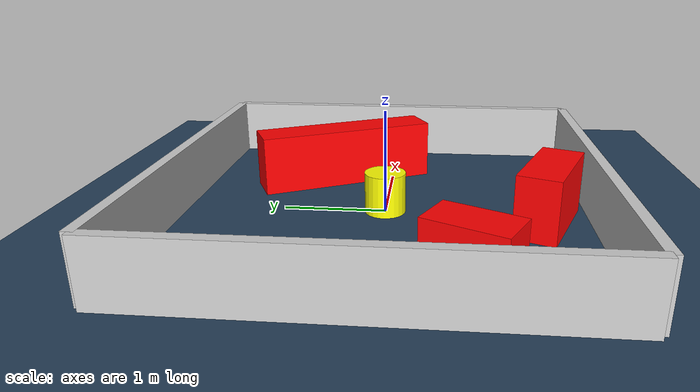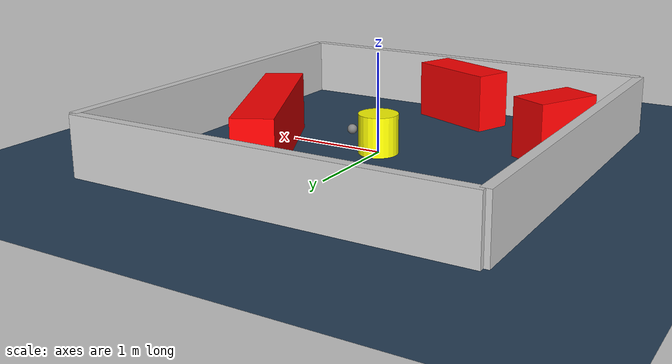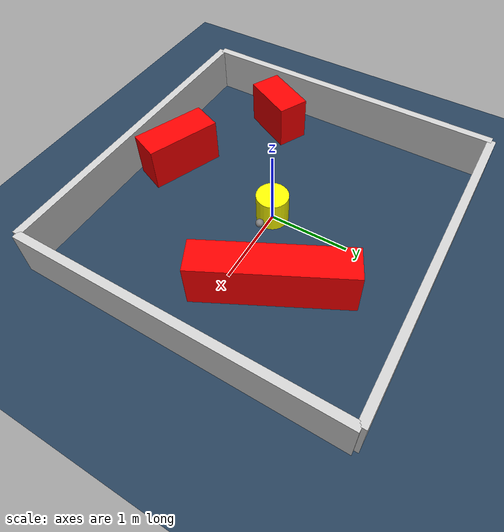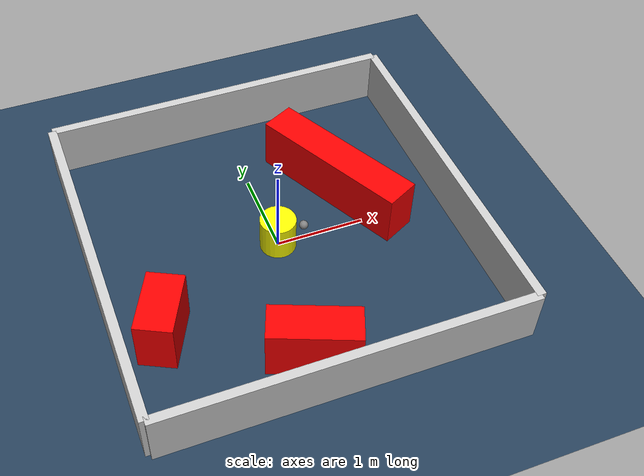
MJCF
<?xml version="1.0" ?>
<mujoco model="generated_environment">
  <option timestep="0.01" integrator="RK4" cone="elliptic"/>
  <default>
    <geom density="1"/>
  </default>
  <asset>
    <texture builtin="gradient" height="3072" rgb1="0.3 0.5 0.7" rgb2="0 0 0" type="skybox" width="512"/>
    <texture builtin="checker" height="300" mark="edge" markrgb="0.8 0.8 0.8" name="groundplane" rgb1="0.2 0.3 0.4" rgb2="0.1 0.2 0.3" type="2d" width="300"/>
    <material name="groundplane" reflectance="0.2" texrepeat="5 5" texture="groundplane" texuniform="true"/>
    <material name="robot" rgba="0.0 1.0 0.0 1"/>
  </asset>
  <worldbody>
    <light dir="0 0 -1" directional="true" pos="0 0 1.5"/>
    <geom condim="4" friction="1.0 0.005 0.001" material="groundplane" name="floor" size="0 0 0.05" type="plane"/>
    <body name="walls">
      <geom name="wall_1" condim="4" pos="-2.0 0.0 0.3" rgba="0.800000011920929 0.800000011920929 0.800000011920929 1.0" size="0.05 2.0 0.3" type="box"/>
      <geom name="wall_2" condim="4" pos="2.0 0.0 0.3" rgba="0.800000011920929 0.800000011920929 0.800000011920929 1.0" size="0.05 2.0 0.3" type="box"/>
      <geom name="wall_3" condim="4" pos="0.0 -2.0 0.3" rgba="0.800000011920929 0.800000011920929 0.800000011920929 1.0" size="2.0 0.05 0.3" type="box"/>
      <geom name="wall_4" condim="4" pos="0.0 2.0 0.3" rgba="0.800000011920929 0.800000011920929 0.800000011920929 1.0" size="2.0 0.05 0.3" type="box"/>
    </body>
    <body name="robot">
      <joint name="joint_x" type="slide" pos="0 0 0" axis="1 0 0"/>
      <joint name="joint_y" type="slide" pos="0 0 0" axis="0 1 0"/>
      <geom name="robot" type="sphere" pos="0.3 0.0 0.2" size="0.05" mass="5." friction="1.0 0.005 0.0001" condim="4" rgba="0.5 0.5 0.5 1.0"/>
      <site name="sensor_ball"/>
    </body>
    <body name="obstacle_movable_1">
      <geom name="obstacle_movable_1" condim="4" pos="0.0 0.0 0.2" euler="0 0 0.0" friction="1.0 0.005 0.001" rgba="1.0 1.0 0.0 1.0" size="0.2 0.2 0.0" type="cylinder" mass="0.1"/>
      <joint type="free"/>
    </body>
    <body name="obstacle_2_static">
      <geom name="obstacle_2_static" condim="4" pos="-0.1961719763340053 -1.5329952449548627 0.3" euler="0 0 337.9610249823045" friction="1.0 0.005 0.001" rgba="1 0 0 1" size="0.4734473154872044 0.2 0.3" type="box"/>
    </body>
    <body name="obstacle_3_static">
      <geom name="obstacle_3_static" condim="4" pos="-1.5184448499243275 -0.7741438043527735 0.3" euler="0 0 63.28189133484531" friction="1.0 0.005 0.001" rgba="1 0 0 1" size="0.3522216732521672 0.2 0.3" type="box"/>
    </body>
    <body name="obstacle_4_static">
      <geom name="obstacle_4_static" condim="4" pos="0.9119416823506994 0.5333797975640688 0.3" euler="0 0 116.50751882367354" friction="1.0 0.005 0.001" rgba="1 0 0 1" size="0.9248576661288517 0.2 0.3" type="box"/>
    </body>
  </worldbody>
  <actuator>
    <motor name="actuator_x" joint="joint_x" gear="1" ctrlrange="-1 1"/>
    <motor name="actuator_y" joint="joint_y" gear="1" ctrlrange="-1 1"/>
  </actuator>
</mujoco>
